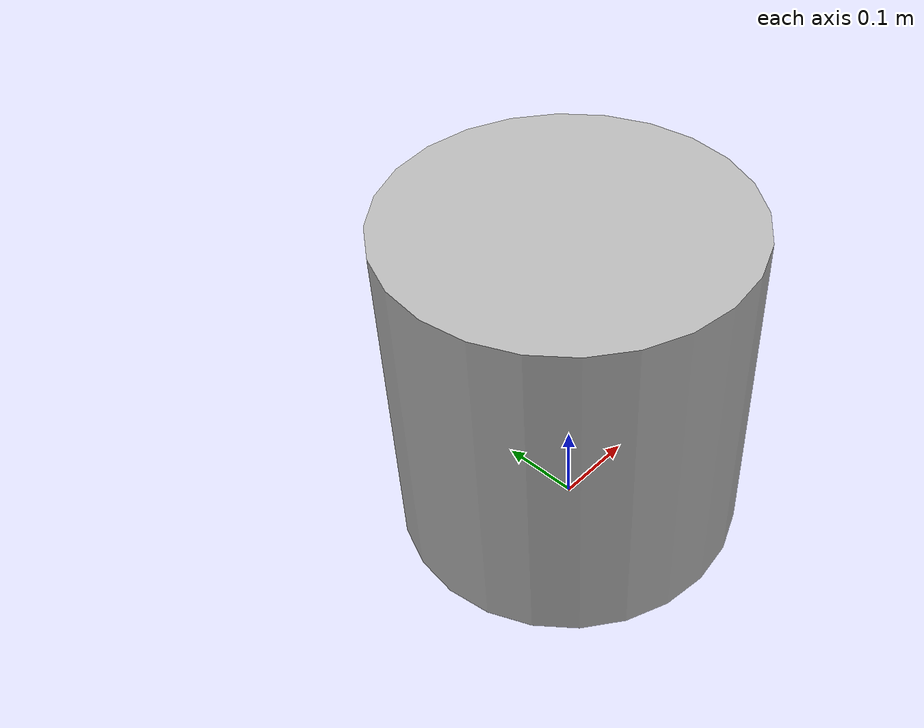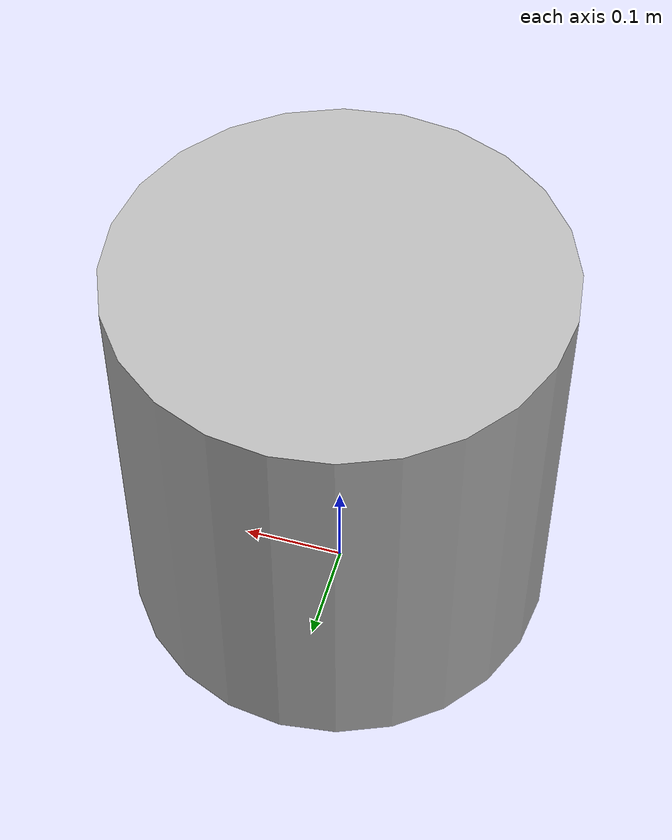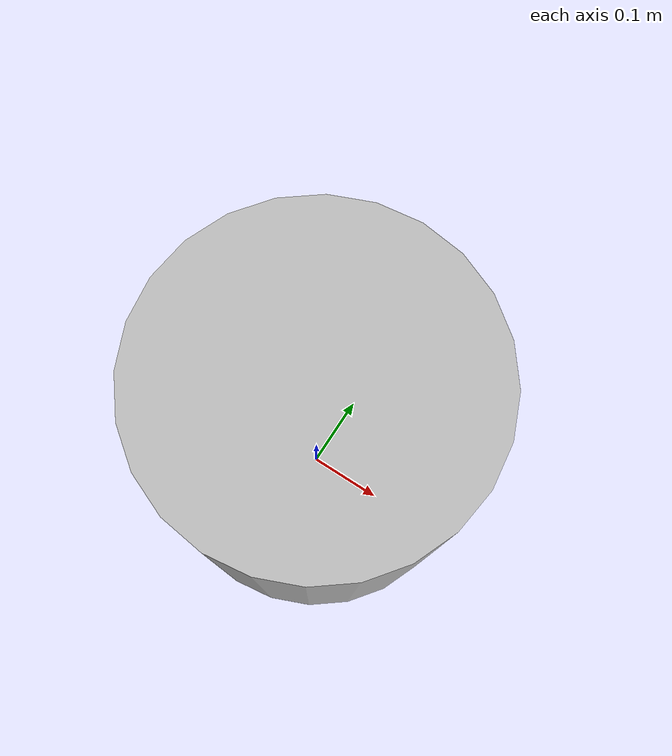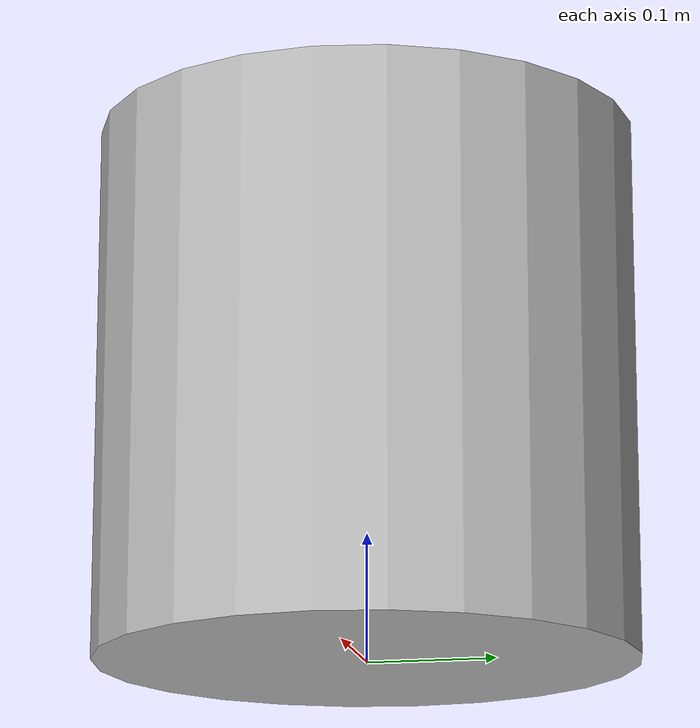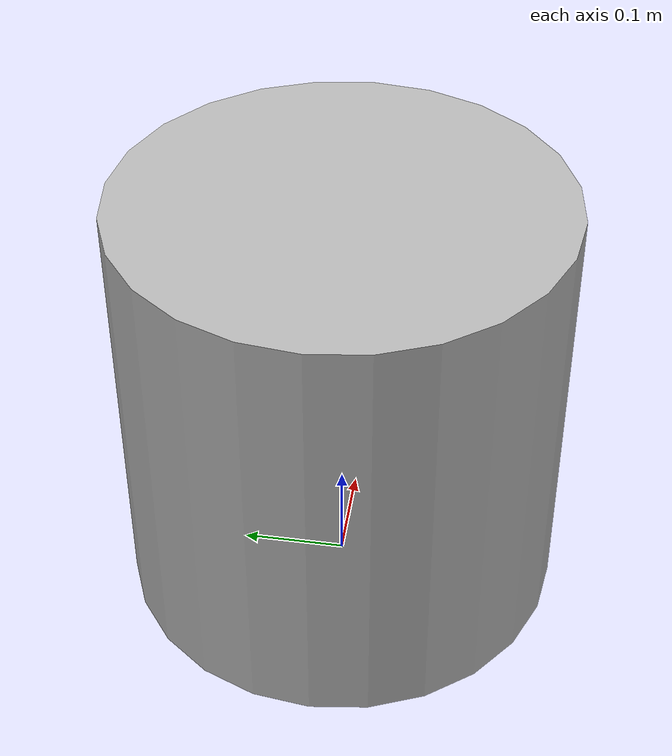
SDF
<?xml version="1.0"?>
<sdf version="1.6">
  <model name="rwc2016/plant_large">
    <link name="1_link">
      <collision name="1_col">
        <geometry>
          <cylinder>
            <length>0.42</length>
            <radius>0.21</radius>
          </cylinder>
        </geometry>
      </collision>
      <visual name="1_vis">
        <geometry>
          <cylinder>
            <length>0.42</length>
            <radius>0.21</radius>
          </cylinder>
        </geometry>
      </visual>
      <pose>0 0 0.21 0 0 0</pose>
    </link>
    <static>true</static>
  </model>
</sdf>
